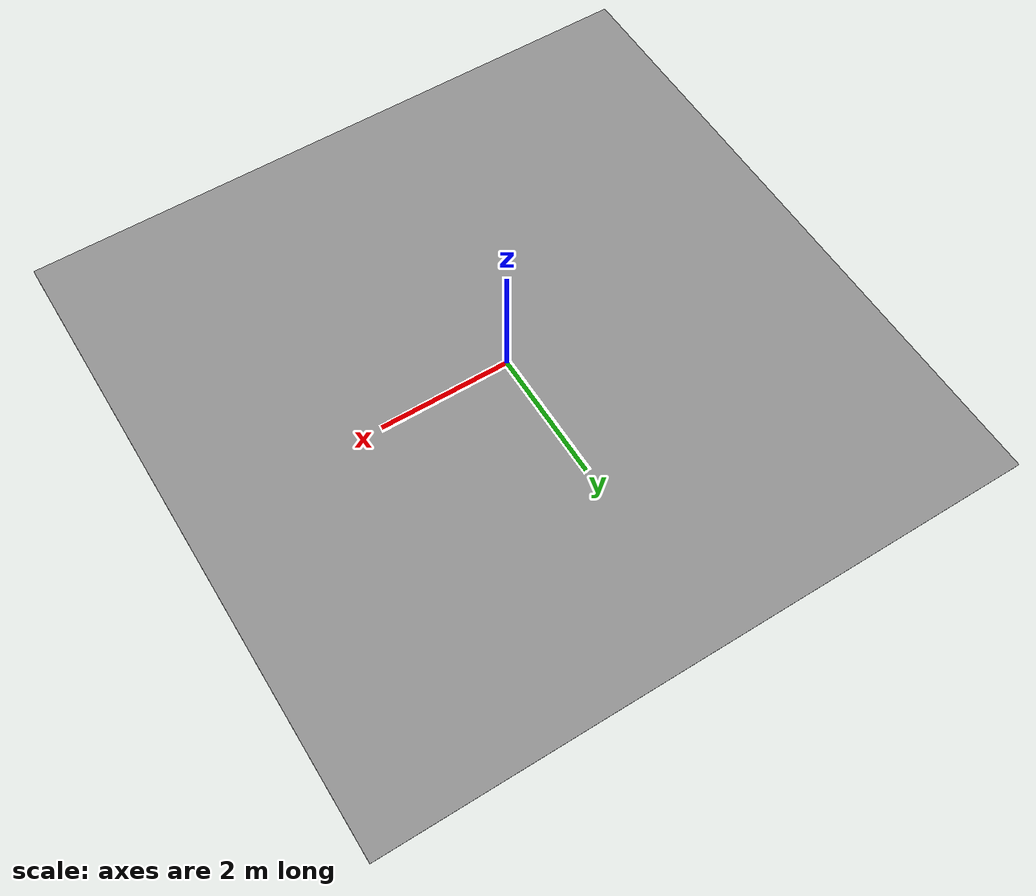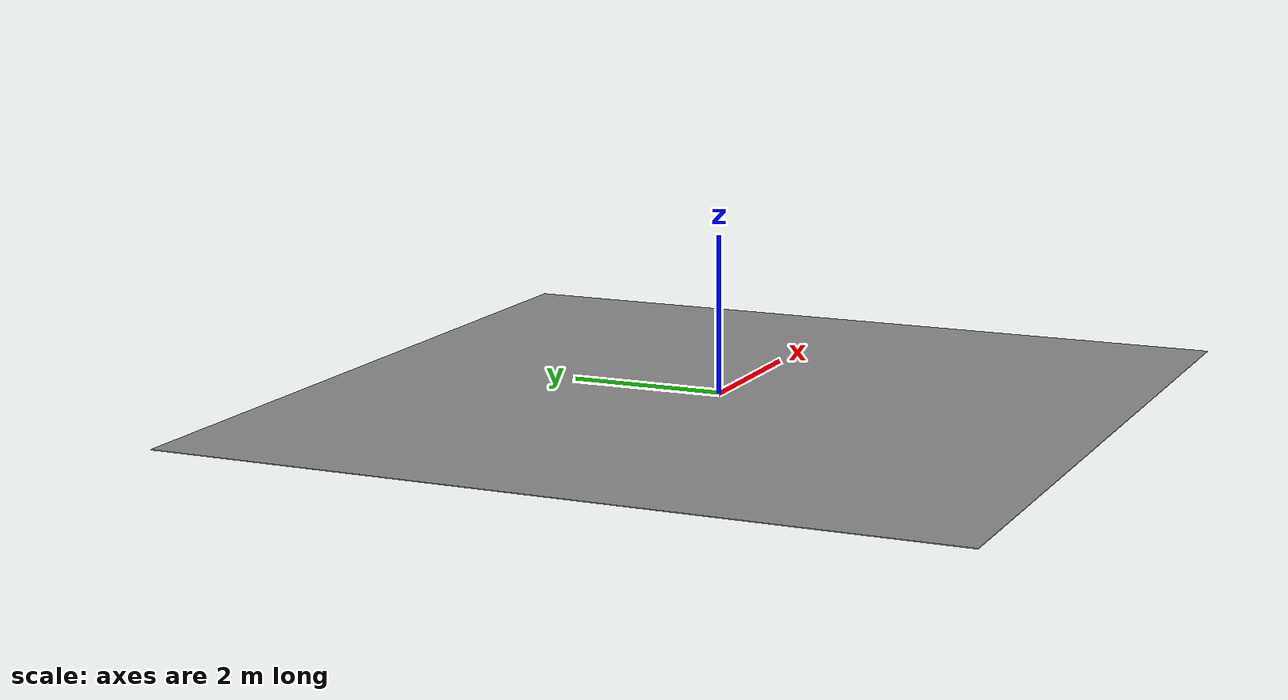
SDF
<?xml version="1.0" ?>
<sdf version="1.4">
  <world name="default">

    <physics type="dart">
      <!-- runs simuation as fast as possible -->
      <real_time_update_rate>0</real_time_update_rate>
      <dart>
        <collision_detector>bullet</collision_detector>
      </dart>
    </physics>

    <include>
      <uri>model://sun</uri>
    </include>

    <model name="ground_plane">
      <static>true</static>
      <link name="link">
        <collision name="collision">
          <geometry>
            <box>
              <size>10 10 0.01 0 0 0</size>
            </box>
          </geometry>
          <surface>
            <friction>
              <ode>
                <mu>0.5</mu>
                <mu2>0.5</mu2>
              </ode>
            </friction>
          </surface>
        </collision>
        <visual name="visual">
          <geometry>
            <box>
              <size>10 10 0.01 0 0 0</size>
            </box>
          </geometry>
          <material>
            <script>
              <uri>file://media/materials/scripts/gazebo.material</uri>
              <name>Gazebo/Grey</name>
            </script>
          </material>
        </visual>
      </link>
      <pose>0 0 -0.04 0 0 0</pose>
    </model>

    <!-- modify camera view point -->
    <gui>
      <camera name="user_camera">
        <!-- zoomed on reflex -->
        <!-- zoomed on whole grapsing situation (with cylinder) -->
        <pose>0.5 0.5 0.43 0 0.57 -2.47</pose>
      </camera>
    </gui>
  </world>
</sdf>
